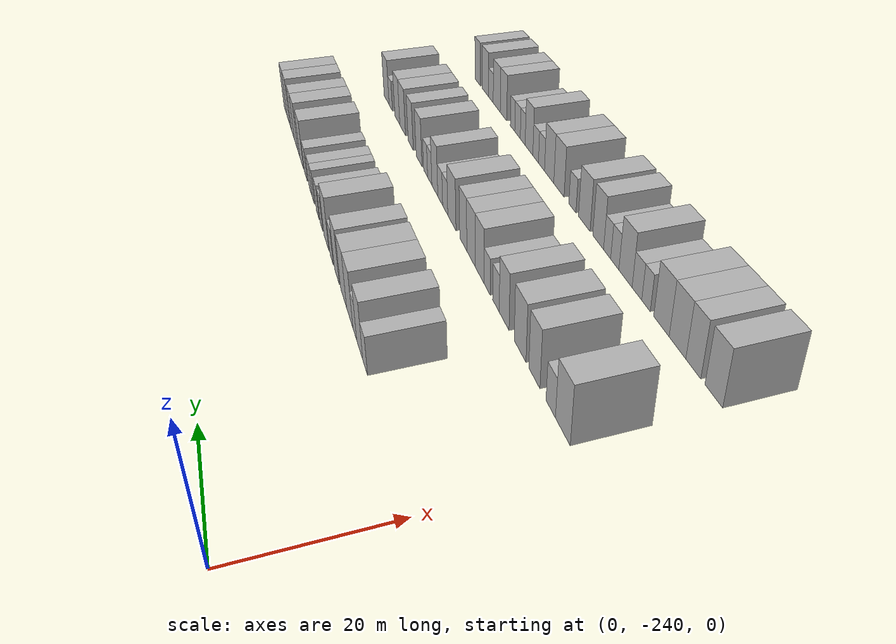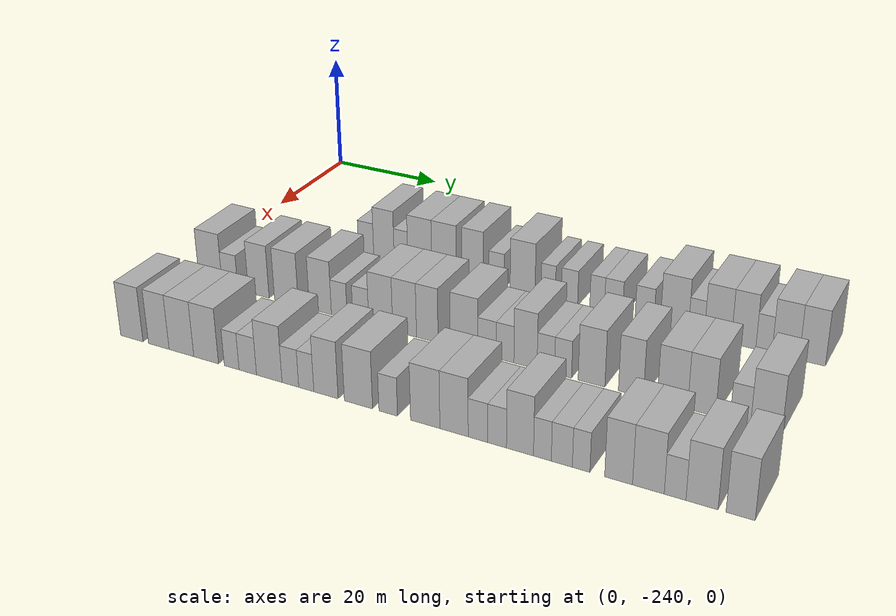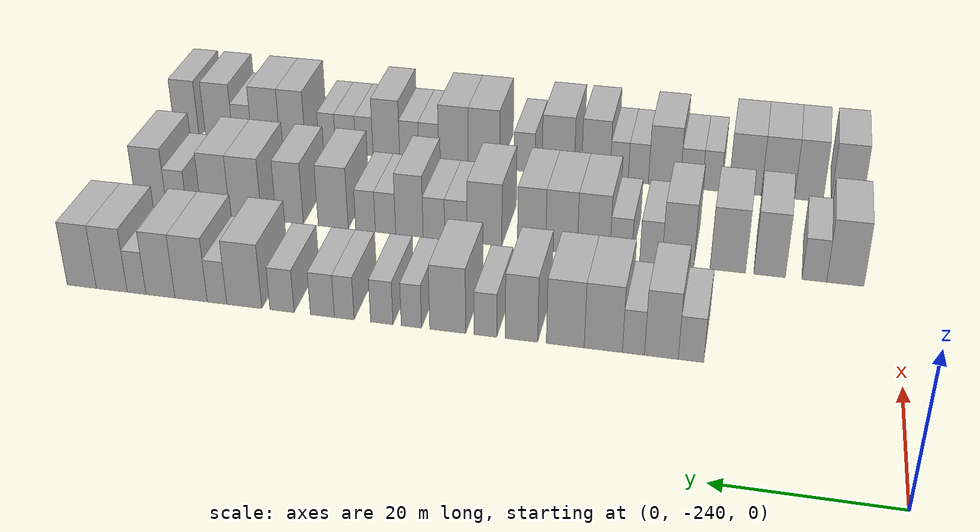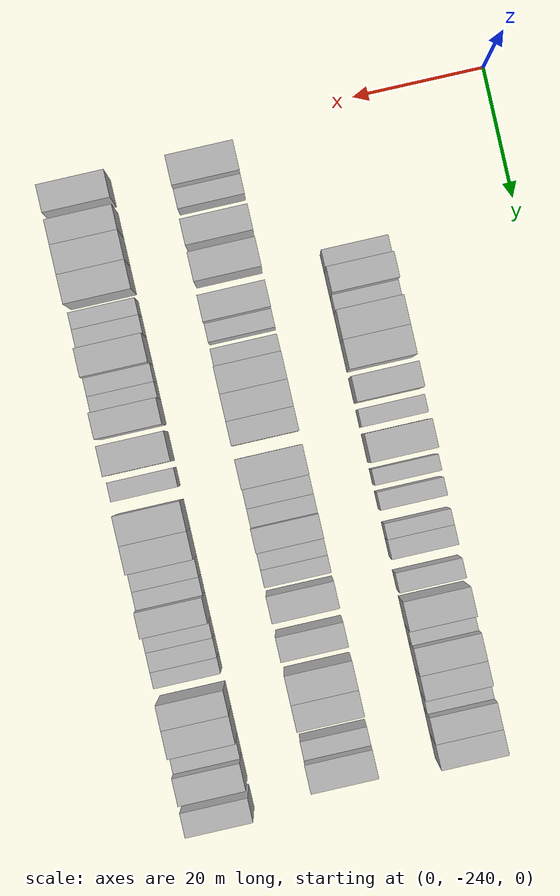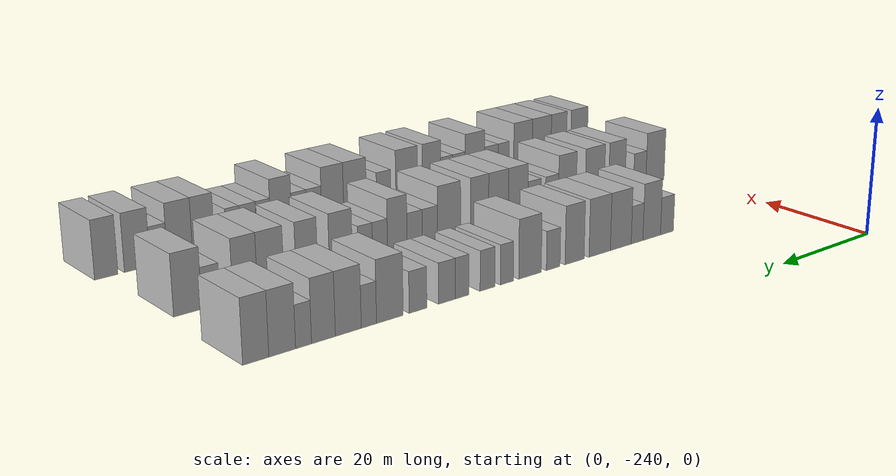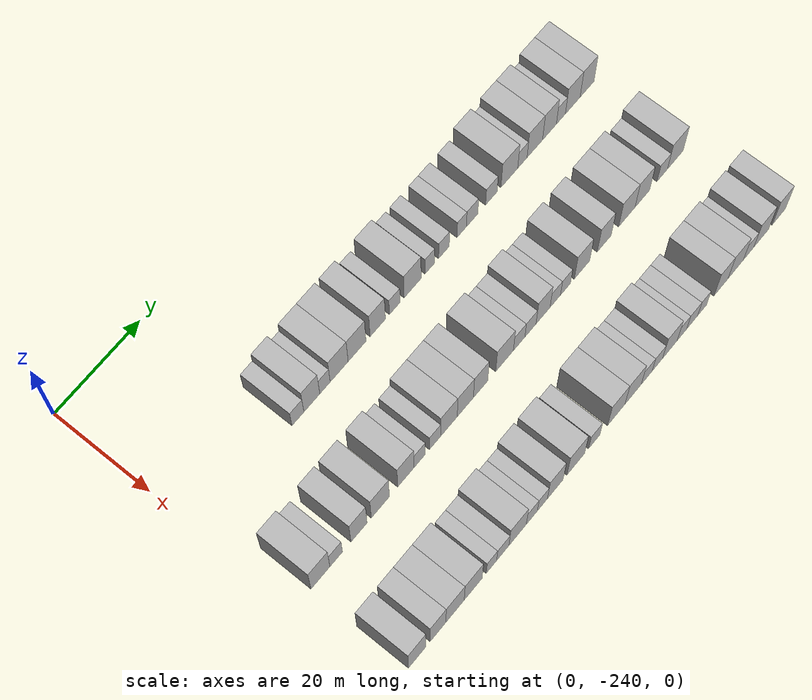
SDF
<sdf version="1.6">
 <world name="default">
  <model name="building_1">
   <static>1</static>
   <pose>25.0000 -216.6953 0 0.000000 0.000000 0.000000</pose>
   <link name="link">
    <pose>0 0 3.00 0 0 0</pose>
    <collision name="collision"><geometry><box><size>10.0000 2.8698 6.0000</size></box></geometry></collision>
    <visual name="visual">
     <cast_shadows>0</cast_shadows>
     <geometry><box><size>10.0000 2.8698 6.0000</size></box></geometry>
     <material>
      <script>
       <uri>model://HANNAS_wall/materials/scripts</uri>
       <uri>model://HANNAS_wall/materials/textures</uri>
       <name>vrc/HANNAS_wall</name>
      </script>
     </material>
    </visual>
   </link>
  </model>
  <model name="building_2">
   <static>1</static>
   <pose>25.0000 -213.3441 0 0.000000 0.000000 0.000000</pose>
   <link name="link">
    <pose>0 0 4.50 0 0 0</pose>
    <collision name="collision"><geometry><box><size>10.0000 3.8325 9.0000</size></box></geometry></collision>
    <visual name="visual">
     <cast_shadows>0</cast_shadows>
     <geometry><box><size>10.0000 3.8325 9.0000</size></box></geometry>
     <material>
      <script>
       <uri>model://HANNAS_wall/materials/scripts</uri>
       <uri>model://HANNAS_wall/materials/textures</uri>
       <name>vrc/HANNAS_wall</name>
      </script>
     </material>
    </visual>
   </link>
  </model>
  <model name="building_3">
   <static>1</static>
   <pose>25.0000 -210.1695 0 0.000000 0.000000 0.000000</pose>
   <link name="link">
    <pose>0 0 3.00 0 0 0</pose>
    <collision name="collision"><geometry><box><size>10.0000 2.5166 6.0000</size></box></geometry></collision>
    <visual name="visual">
     <cast_shadows>0</cast_shadows>
     <geometry><box><size>10.0000 2.5166 6.0000</size></box></geometry>
     <material>
      <script>
       <uri>model://HANNAS_wall/materials/scripts</uri>
       <uri>model://HANNAS_wall/materials/textures</uri>
       <name>vrc/HANNAS_wall</name>
      </script>
     </material>
    </visual>
   </link>
  </model>
  <model name="building_4">
   <static>1</static>
   <pose>25.0000 -206.7211 0 0.000000 0.000000 0.000000</pose>
   <link name="link">
    <pose>0 0 4.50 0 0 0</pose>
    <collision name="collision"><geometry><box><size>10.0000 4.3803 9.0000</size></box></geometry></collision>
    <visual name="visual">
     <cast_shadows>0</cast_shadows>
     <geometry><box><size>10.0000 4.3803 9.0000</size></box></geometry>
     <material>
      <script>
       <uri>model://HANNAS_wall/materials/scripts</uri>
       <uri>model://HANNAS_wall/materials/textures</uri>
       <name>vrc/HANNAS_wall</name>
      </script>
     </material>
    </visual>
   </link>
  </model>
  <model name="building_5">
   <static>1</static>
   <pose>25.0000 -202.3341 0 0.000000 0.000000 0.000000</pose>
   <link name="link">
    <pose>0 0 4.50 0 0 0</pose>
    <collision name="collision"><geometry><box><size>10.0000 4.3935 9.0000</size></box></geometry></collision>
    <visual name="visual">
     <cast_shadows>0</cast_shadows>
     <geometry><box><size>10.0000 4.3935 9.0000</size></box></geometry>
     <material>
      <script>
       <uri>model://HANNAS_wall/materials/scripts</uri>
       <uri>model://HANNAS_wall/materials/textures</uri>
       <name>vrc/HANNAS_wall</name>
      </script>
     </material>
    </visual>
   </link>
  </model>
  <model name="building_6">
   <static>1</static>
   <pose>25.0000 -197.2362 0 0.000000 0.000000 0.000000</pose>
   <link name="link">
    <pose>0 0 4.50 0 0 0</pose>
    <collision name="collision"><geometry><box><size>10.0000 3.8024 9.0000</size></box></geometry></collision>
    <visual name="visual">
     <cast_shadows>0</cast_shadows>
     <geometry><box><size>10.0000 3.8024 9.0000</size></box></geometry>
     <material>
      <script>
       <uri>model://HANNAS_wall/materials/scripts</uri>
       <uri>model://HANNAS_wall/materials/textures</uri>
       <name>vrc/HANNAS_wall</name>
      </script>
     </material>
    </visual>
   </link>
  </model>
  <model name="building_7">
   <static>1</static>
   <pose>25.0000 -193.0057 0 0.000000 0.000000 0.000000</pose>
   <link name="link">
    <pose>0 0 3.00 0 0 0</pose>
    <collision name="collision"><geometry><box><size>10.0000 2.6584 6.0000</size></box></geometry></collision>
    <visual name="visual">
     <cast_shadows>0</cast_shadows>
     <geometry><box><size>10.0000 2.6584 6.0000</size></box></geometry>
     <material>
      <script>
       <uri>model://HANNAS_wall/materials/scripts</uri>
       <uri>model://HANNAS_wall/materials/textures</uri>
       <name>vrc/HANNAS_wall</name>
      </script>
     </material>
    </visual>
   </link>
  </model>
  <model name="building_8">
   <static>1</static>
   <pose>25.0000 -188.5366 0 0.000000 0.000000 0.000000</pose>
   <link name="link">
    <pose>0 0 4.50 0 0 0</pose>
    <collision name="collision"><geometry><box><size>10.0000 4.2798 9.0000</size></box></geometry></collision>
    <visual name="visual">
     <cast_shadows>0</cast_shadows>
     <geometry><box><size>10.0000 4.2798 9.0000</size></box></geometry>
     <material>
      <script>
       <uri>model://HANNAS_wall/materials/scripts</uri>
       <uri>model://HANNAS_wall/materials/textures</uri>
       <name>vrc/HANNAS_wall</name>
      </script>
     </material>
    </visual>
   </link>
  </model>
  <model name="building_9">
   <static>1</static>
   <pose>25.0000 -184.1848 0 0.000000 0.000000 0.000000</pose>
   <link name="link">
    <pose>0 0 3.00 0 0 0</pose>
    <collision name="collision"><geometry><box><size>10.0000 2.4239 6.0000</size></box></geometry></collision>
    <visual name="visual">
     <cast_shadows>0</cast_shadows>
     <geometry><box><size>10.0000 2.4239 6.0000</size></box></geometry>
     <material>
      <script>
       <uri>model://HANNAS_wall/materials/scripts</uri>
       <uri>model://HANNAS_wall/materials/textures</uri>
       <name>vrc/HANNAS_wall</name>
      </script>
     </material>
    </visual>
   </link>
  </model>
  <model name="building_10">
   <static>1</static>
   <pose>25.0000 -180.6165 0 0.000000 0.000000 0.000000</pose>
   <link name="link">
    <pose>0 0 3.00 0 0 0</pose>
    <collision name="collision"><geometry><box><size>10.0000 2.7126 6.0000</size></box></geometry></collision>
    <visual name="visual">
     <cast_shadows>0</cast_shadows>
     <geometry><box><size>10.0000 2.7126 6.0000</size></box></geometry>
     <material>
      <script>
       <uri>model://HANNAS_wall/materials/scripts</uri>
       <uri>model://HANNAS_wall/materials/textures</uri>
       <name>vrc/HANNAS_wall</name>
      </script>
     </material>
    </visual>
   </link>
  </model>
  <model name="building_11">
   <static>1</static>
   <pose>25.0000 -176.0593 0 0.000000 0.000000 0.000000</pose>
   <link name="link">
    <pose>0 0 3.00 0 0 0</pose>
    <collision name="collision"><geometry><box><size>10.0000 2.4017 6.0000</size></box></geometry></collision>
    <visual name="visual">
     <cast_shadows>0</cast_shadows>
     <geometry><box><size>10.0000 2.4017 6.0000</size></box></geometry>
     <material>
      <script>
       <uri>model://HANNAS_wall/materials/scripts</uri>
       <uri>model://HANNAS_wall/materials/textures</uri>
       <name>vrc/HANNAS_wall</name>
      </script>
     </material>
    </visual>
   </link>
  </model>
  <model name="building_12">
   <static>1</static>
   <pose>25.0000 -173.3840 0 0.000000 0.000000 0.000000</pose>
   <link name="link">
    <pose>0 0 3.00 0 0 0</pose>
    <collision name="collision"><geometry><box><size>10.0000 2.9487 6.0000</size></box></geometry></collision>
    <visual name="visual">
     <cast_shadows>0</cast_shadows>
     <geometry><box><size>10.0000 2.9487 6.0000</size></box></geometry>
     <material>
      <script>
       <uri>model://HANNAS_wall/materials/scripts</uri>
       <uri>model://HANNAS_wall/materials/textures</uri>
       <name>vrc/HANNAS_wall</name>
      </script>
     </material>
    </visual>
   </link>
  </model>
  <model name="building_13">
   <static>1</static>
   <pose>25.0000 -168.4103 0 0.000000 0.000000 0.000000</pose>
   <link name="link">
    <pose>0 0 3.00 0 0 0</pose>
    <collision name="collision"><geometry><box><size>10.0000 2.9987 6.0000</size></box></geometry></collision>
    <visual name="visual">
     <cast_shadows>0</cast_shadows>
     <geometry><box><size>10.0000 2.9987 6.0000</size></box></geometry>
     <material>
      <script>
       <uri>model://HANNAS_wall/materials/scripts</uri>
       <uri>model://HANNAS_wall/materials/textures</uri>
       <name>vrc/HANNAS_wall</name>
      </script>
     </material>
    </visual>
   </link>
  </model>
  <model name="building_14">
   <static>1</static>
   <pose>25.0000 -163.7138 0 0.000000 0.000000 0.000000</pose>
   <link name="link">
    <pose>0 0 4.50 0 0 0</pose>
    <collision name="collision"><geometry><box><size>10.0000 4.3944 9.0000</size></box></geometry></collision>
    <visual name="visual">
     <cast_shadows>0</cast_shadows>
     <geometry><box><size>10.0000 4.3944 9.0000</size></box></geometry>
     <material>
      <script>
       <uri>model://HANNAS_wall/materials/scripts</uri>
       <uri>model://HANNAS_wall/materials/textures</uri>
       <name>vrc/HANNAS_wall</name>
      </script>
     </material>
    </visual>
   </link>
  </model>
  <model name="building_15">
   <static>1</static>
   <pose>25.0000 -160.2892 0 0.000000 0.000000 0.000000</pose>
   <link name="link">
    <pose>0 0 3.00 0 0 0</pose>
    <collision name="collision"><geometry><box><size>10.0000 2.4548 6.0000</size></box></geometry></collision>
    <visual name="visual">
     <cast_shadows>0</cast_shadows>
     <geometry><box><size>10.0000 2.4548 6.0000</size></box></geometry>
     <material>
      <script>
       <uri>model://HANNAS_wall/materials/scripts</uri>
       <uri>model://HANNAS_wall/materials/textures</uri>
       <name>vrc/HANNAS_wall</name>
      </script>
     </material>
    </visual>
   </link>
  </model>
  <model name="building_16">
   <static>1</static>
   <pose>25.0000 -157.0114 0 0.000000 0.000000 0.000000</pose>
   <link name="link">
    <pose>0 0 4.50 0 0 0</pose>
    <collision name="collision"><geometry><box><size>10.0000 4.1008 9.0000</size></box></geometry></collision>
    <visual name="visual">
     <cast_shadows>0</cast_shadows>
     <geometry><box><size>10.0000 4.1008 9.0000</size></box></geometry>
     <material>
      <script>
       <uri>model://HANNAS_wall/materials/scripts</uri>
       <uri>model://HANNAS_wall/materials/textures</uri>
       <name>vrc/HANNAS_wall</name>
      </script>
     </material>
    </visual>
   </link>
  </model>
  <model name="building_17">
   <static>1</static>
   <pose>25.0000 -153.1219 0 0.000000 0.000000 0.000000</pose>
   <link name="link">
    <pose>0 0 4.50 0 0 0</pose>
    <collision name="collision"><geometry><box><size>10.0000 3.6781 9.0000</size></box></geometry></collision>
    <visual name="visual">
     <cast_shadows>0</cast_shadows>
     <geometry><box><size>10.0000 3.6781 9.0000</size></box></geometry>
     <material>
      <script>
       <uri>model://HANNAS_wall/materials/scripts</uri>
       <uri>model://HANNAS_wall/materials/textures</uri>
       <name>vrc/HANNAS_wall</name>
      </script>
     </material>
    </visual>
   </link>
  </model>
  <model name="building_18">
   <static>1</static>
   <pose>25.0000 -150.0791 0 0.000000 0.000000 0.000000</pose>
   <link name="link">
    <pose>0 0 3.00 0 0 0</pose>
    <collision name="collision"><geometry><box><size>10.0000 2.4076 6.0000</size></box></geometry></collision>
    <visual name="visual">
     <cast_shadows>0</cast_shadows>
     <geometry><box><size>10.0000 2.4076 6.0000</size></box></geometry>
     <material>
      <script>
       <uri>model://HANNAS_wall/materials/scripts</uri>
       <uri>model://HANNAS_wall/materials/textures</uri>
       <name>vrc/HANNAS_wall</name>
      </script>
     </material>
    </visual>
   </link>
  </model>
  <model name="building_19">
   <static>1</static>
   <pose>25.0000 -146.8874 0 0.000000 0.000000 0.000000</pose>
   <link name="link">
    <pose>0 0 4.50 0 0 0</pose>
    <collision name="collision"><geometry><box><size>10.0000 3.9758 9.0000</size></box></geometry></collision>
    <visual name="visual">
     <cast_shadows>0</cast_shadows>
     <geometry><box><size>10.0000 3.9758 9.0000</size></box></geometry>
     <material>
      <script>
       <uri>model://HANNAS_wall/materials/scripts</uri>
       <uri>model://HANNAS_wall/materials/textures</uri>
       <name>vrc/HANNAS_wall</name>
      </script>
     </material>
    </visual>
   </link>
  </model>
  <model name="building_20">
   <static>1</static>
   <pose>25.0000 -143.0052 0 0.000000 0.000000 0.000000</pose>
   <link name="link">
    <pose>0 0 4.50 0 0 0</pose>
    <collision name="collision"><geometry><box><size>10.0000 3.7887 9.0000</size></box></geometry></collision>
    <visual name="visual">
     <cast_shadows>0</cast_shadows>
     <geometry><box><size>10.0000 3.7887 9.0000</size></box></geometry>
     <material>
      <script>
       <uri>model://HANNAS_wall/materials/scripts</uri>
       <uri>model://HANNAS_wall/materials/textures</uri>
       <name>vrc/HANNAS_wall</name>
      </script>
     </material>
    </visual>
   </link>
  </model>
  <model name="building_104">
   <static>1</static>
   <pose>44.0000 -233.7806 0 0.000000 0.000000 0.000000</pose>
   <link name="link">
    <pose>0 0 4.50 0 0 0</pose>
    <collision name="collision"><geometry><box><size>10.0000 4.4388 9.0000</size></box></geometry></collision>
    <visual name="visual">
     <cast_shadows>0</cast_shadows>
     <geometry><box><size>10.0000 4.4388 9.0000</size></box></geometry>
     <material>
      <script>
       <uri>model://HANNAS_wall/materials/scripts</uri>
       <uri>model://HANNAS_wall/materials/textures</uri>
       <name>vrc/HANNAS_wall</name>
      </script>
     </material>
    </visual>
   </link>
  </model>
  <model name="building_105">
   <static>1</static>
   <pose>44.0000 -230.0752 0 0.000000 0.000000 0.000000</pose>
   <link name="link">
    <pose>0 0 3.00 0 0 0</pose>
    <collision name="collision"><geometry><box><size>10.0000 2.9720 6.0000</size></box></geometry></collision>
    <visual name="visual">
     <cast_shadows>0</cast_shadows>
     <geometry><box><size>10.0000 2.9720 6.0000</size></box></geometry>
     <material>
      <script>
       <uri>model://HANNAS_wall/materials/scripts</uri>
       <uri>model://HANNAS_wall/materials/textures</uri>
       <name>vrc/HANNAS_wall</name>
      </script>
     </material>
    </visual>
   </link>
  </model>
  <model name="building_106">
   <static>1</static>
   <pose>44.0000 -224.6689 0 0.000000 0.000000 0.000000</pose>
   <link name="link">
    <pose>0 0 4.50 0 0 0</pose>
    <collision name="collision"><geometry><box><size>10.0000 3.8405 9.0000</size></box></geometry></collision>
    <visual name="visual">
     <cast_shadows>0</cast_shadows>
     <geometry><box><size>10.0000 3.8405 9.0000</size></box></geometry>
     <material>
      <script>
       <uri>model://HANNAS_wall/materials/scripts</uri>
       <uri>model://HANNAS_wall/materials/textures</uri>
       <name>vrc/HANNAS_wall</name>
      </script>
     </material>
    </visual>
   </link>
  </model>
  <model name="building_107">
   <static>1</static>
   <pose>44.0000 -219.5739 0 0.000000 0.000000 0.000000</pose>
   <link name="link">
    <pose>0 0 4.50 0 0 0</pose>
    <collision name="collision"><geometry><box><size>10.0000 4.3495 9.0000</size></box></geometry></collision>
    <visual name="visual">
     <cast_shadows>0</cast_shadows>
     <geometry><box><size>10.0000 4.3495 9.0000</size></box></geometry>
     <material>
      <script>
       <uri>model://HANNAS_wall/materials/scripts</uri>
       <uri>model://HANNAS_wall/materials/textures</uri>
       <name>vrc/HANNAS_wall</name>
      </script>
     </material>
    </visual>
   </link>
  </model>
  <model name="building_108">
   <static>1</static>
   <pose>44.0000 -213.4348 0 0.000000 0.000000 0.000000</pose>
   <link name="link">
    <pose>0 0 4.50 0 0 0</pose>
    <collision name="collision"><geometry><box><size>10.0000 3.9286 9.0000</size></box></geometry></collision>
    <visual name="visual">
     <cast_shadows>0</cast_shadows>
     <geometry><box><size>10.0000 3.9286 9.0000</size></box></geometry>
     <material>
      <script>
       <uri>model://HANNAS_wall/materials/scripts</uri>
       <uri>model://HANNAS_wall/materials/textures</uri>
       <name>vrc/HANNAS_wall</name>
      </script>
     </material>
    </visual>
   </link>
  </model>
  <model name="building_109">
   <static>1</static>
   <pose>44.0000 -210.0770 0 0.000000 0.000000 0.000000</pose>
   <link name="link">
    <pose>0 0 3.00 0 0 0</pose>
    <collision name="collision"><geometry><box><size>10.0000 2.7871 6.0000</size></box></geometry></collision>
    <visual name="visual">
     <cast_shadows>0</cast_shadows>
     <geometry><box><size>10.0000 2.7871 6.0000</size></box></geometry>
     <material>
      <script>
       <uri>model://HANNAS_wall/materials/scripts</uri>
       <uri>model://HANNAS_wall/materials/textures</uri>
       <name>vrc/HANNAS_wall</name>
      </script>
     </material>
    </visual>
   </link>
  </model>
  <model name="building_110">
   <static>1</static>
   <pose>44.0000 -206.3109 0 0.000000 0.000000 0.000000</pose>
   <link name="link">
    <pose>0 0 3.00 0 0 0</pose>
    <collision name="collision"><geometry><box><size>10.0000 2.7449 6.0000</size></box></geometry></collision>
    <visual name="visual">
     <cast_shadows>0</cast_shadows>
     <geometry><box><size>10.0000 2.7449 6.0000</size></box></geometry>
     <material>
      <script>
       <uri>model://HANNAS_wall/materials/scripts</uri>
       <uri>model://HANNAS_wall/materials/textures</uri>
       <name>vrc/HANNAS_wall</name>
      </script>
     </material>
    </visual>
   </link>
  </model>
  <model name="building_111">
   <static>1</static>
   <pose>44.0000 -202.8830 0 0.000000 0.000000 0.000000</pose>
   <link name="link">
    <pose>0 0 4.50 0 0 0</pose>
    <collision name="collision"><geometry><box><size>10.0000 4.1109 9.0000</size></box></geometry></collision>
    <visual name="visual">
     <cast_shadows>0</cast_shadows>
     <geometry><box><size>10.0000 4.1109 9.0000</size></box></geometry>
     <material>
      <script>
       <uri>model://HANNAS_wall/materials/scripts</uri>
       <uri>model://HANNAS_wall/materials/textures</uri>
       <name>vrc/HANNAS_wall</name>
      </script>
     </material>
    </visual>
   </link>
  </model>
  <model name="building_112">
   <static>1</static>
   <pose>44.0000 -198.8192 0 0.000000 0.000000 0.000000</pose>
   <link name="link">
    <pose>0 0 4.50 0 0 0</pose>
    <collision name="collision"><geometry><box><size>10.0000 4.0167 9.0000</size></box></geometry></collision>
    <visual name="visual">
     <cast_shadows>0</cast_shadows>
     <geometry><box><size>10.0000 4.0167 9.0000</size></box></geometry>
     <material>
      <script>
       <uri>model://HANNAS_wall/materials/scripts</uri>
       <uri>model://HANNAS_wall/materials/textures</uri>
       <name>vrc/HANNAS_wall</name>
      </script>
     </material>
    </visual>
   </link>
  </model>
  <model name="building_113">
   <static>1</static>
   <pose>44.0000 -195.0103 0 0.000000 0.000000 0.000000</pose>
   <link name="link">
    <pose>0 0 4.50 0 0 0</pose>
    <collision name="collision"><geometry><box><size>10.0000 3.6010 9.0000</size></box></geometry></collision>
    <visual name="visual">
     <cast_shadows>0</cast_shadows>
     <geometry><box><size>10.0000 3.6010 9.0000</size></box></geometry>
     <material>
      <script>
       <uri>model://HANNAS_wall/materials/scripts</uri>
       <uri>model://HANNAS_wall/materials/textures</uri>
       <name>vrc/HANNAS_wall</name>
      </script>
     </material>
    </visual>
   </link>
  </model>
  <model name="building_114">
   <static>1</static>
   <pose>44.0000 -188.9753 0 0.000000 0.000000 0.000000</pose>
   <link name="link">
    <pose>0 0 4.50 0 0 0</pose>
    <collision name="collision"><geometry><box><size>10.0000 4.4691 9.0000</size></box></geometry></collision>
    <visual name="visual">
     <cast_shadows>0</cast_shadows>
     <geometry><box><size>10.0000 4.4691 9.0000</size></box></geometry>
     <material>
      <script>
       <uri>model://HANNAS_wall/materials/scripts</uri>
       <uri>model://HANNAS_wall/materials/textures</uri>
       <name>vrc/HANNAS_wall</name>
      </script>
     </material>
    </visual>
   </link>
  </model>
  <model name="building_115">
   <static>1</static>
   <pose>44.0000 -185.2750 0 0.000000 0.000000 0.000000</pose>
   <link name="link">
    <pose>0 0 3.00 0 0 0</pose>
    <collision name="collision"><geometry><box><size>10.0000 2.9315 6.0000</size></box></geometry></collision>
    <visual name="visual">
     <cast_shadows>0</cast_shadows>
     <geometry><box><size>10.0000 2.9315 6.0000</size></box></geometry>
     <material>
      <script>
       <uri>model://HANNAS_wall/materials/scripts</uri>
       <uri>model://HANNAS_wall/materials/textures</uri>
       <name>vrc/HANNAS_wall</name>
      </script>
     </material>
    </visual>
   </link>
  </model>
  <model name="building_116">
   <static>1</static>
   <pose>44.0000 -182.3963 0 0.000000 0.000000 0.000000</pose>
   <link name="link">
    <pose>0 0 3.00 0 0 0</pose>
    <collision name="collision"><geometry><box><size>10.0000 2.8260 6.0000</size></box></geometry></collision>
    <visual name="visual">
     <cast_shadows>0</cast_shadows>
     <geometry><box><size>10.0000 2.8260 6.0000</size></box></geometry>
     <material>
      <script>
       <uri>model://HANNAS_wall/materials/scripts</uri>
       <uri>model://HANNAS_wall/materials/textures</uri>
       <name>vrc/HANNAS_wall</name>
      </script>
     </material>
    </visual>
   </link>
  </model>
  <model name="building_117">
   <static>1</static>
   <pose>44.0000 -179.1709 0 0.000000 0.000000 0.000000</pose>
   <link name="link">
    <pose>0 0 4.50 0 0 0</pose>
    <collision name="collision"><geometry><box><size>10.0000 3.6247 9.0000</size></box></geometry></collision>
    <visual name="visual">
     <cast_shadows>0</cast_shadows>
     <geometry><box><size>10.0000 3.6247 9.0000</size></box></geometry>
     <material>
      <script>
       <uri>model://HANNAS_wall/materials/scripts</uri>
       <uri>model://HANNAS_wall/materials/textures</uri>
       <name>vrc/HANNAS_wall</name>
      </script>
     </material>
    </visual>
   </link>
  </model>
  <model name="building_118">
   <static>1</static>
   <pose>44.0000 -176.0124 0 0.000000 0.000000 0.000000</pose>
   <link name="link">
    <pose>0 0 3.00 0 0 0</pose>
    <collision name="collision"><geometry><box><size>10.0000 2.6923 6.0000</size></box></geometry></collision>
    <visual name="visual">
     <cast_shadows>0</cast_shadows>
     <geometry><box><size>10.0000 2.6923 6.0000</size></box></geometry>
     <material>
      <script>
       <uri>model://HANNAS_wall/materials/scripts</uri>
       <uri>model://HANNAS_wall/materials/textures</uri>
       <name>vrc/HANNAS_wall</name>
      </script>
     </material>
    </visual>
   </link>
  </model>
  <model name="building_119">
   <static>1</static>
   <pose>44.0000 -173.3636 0 0.000000 0.000000 0.000000</pose>
   <link name="link">
    <pose>0 0 3.00 0 0 0</pose>
    <collision name="collision"><geometry><box><size>10.0000 2.6053 6.0000</size></box></geometry></collision>
    <visual name="visual">
     <cast_shadows>0</cast_shadows>
     <geometry><box><size>10.0000 2.6053 6.0000</size></box></geometry>
     <material>
      <script>
       <uri>model://HANNAS_wall/materials/scripts</uri>
       <uri>model://HANNAS_wall/materials/textures</uri>
       <name>vrc/HANNAS_wall</name>
      </script>
     </material>
    </visual>
   </link>
  </model>
  <model name="building_120">
   <static>1</static>
   <pose>44.0000 -169.0514 0 0.000000 0.000000 0.000000</pose>
   <link name="link">
    <pose>0 0 4.50 0 0 0</pose>
    <collision name="collision"><geometry><box><size>10.0000 4.0191 9.0000</size></box></geometry></collision>
    <visual name="visual">
     <cast_shadows>0</cast_shadows>
     <geometry><box><size>10.0000 4.0191 9.0000</size></box></geometry>
     <material>
      <script>
       <uri>model://HANNAS_wall/materials/scripts</uri>
       <uri>model://HANNAS_wall/materials/textures</uri>
       <name>vrc/HANNAS_wall</name>
      </script>
     </material>
    </visual>
   </link>
  </model>
  <model name="building_121">
   <static>1</static>
   <pose>44.0000 -163.2043 0 0.000000 0.000000 0.000000</pose>
   <link name="link">
    <pose>0 0 4.50 0 0 0</pose>
    <collision name="collision"><geometry><box><size>10.0000 3.6750 9.0000</size></box></geometry></collision>
    <visual name="visual">
     <cast_shadows>0</cast_shadows>
     <geometry><box><size>10.0000 3.6750 9.0000</size></box></geometry>
     <material>
      <script>
       <uri>model://HANNAS_wall/materials/scripts</uri>
       <uri>model://HANNAS_wall/materials/textures</uri>
       <name>vrc/HANNAS_wall</name>
      </script>
     </material>
    </visual>
   </link>
  </model>
  <model name="building_122">
   <static>1</static>
   <pose>44.0000 -157.1944 0 0.000000 0.000000 0.000000</pose>
   <link name="link">
    <pose>0 0 4.50 0 0 0</pose>
    <collision name="collision"><geometry><box><size>10.0000 4.3448 9.0000</size></box></geometry></collision>
    <visual name="visual">
     <cast_shadows>0</cast_shadows>
     <geometry><box><size>10.0000 4.3448 9.0000</size></box></geometry>
     <material>
      <script>
       <uri>model://HANNAS_wall/materials/scripts</uri>
       <uri>model://HANNAS_wall/materials/textures</uri>
       <name>vrc/HANNAS_wall</name>
      </script>
     </material>
    </visual>
   </link>
  </model>
  <model name="building_123">
   <static>1</static>
   <pose>44.0000 -153.0560 0 0.000000 0.000000 0.000000</pose>
   <link name="link">
    <pose>0 0 4.50 0 0 0</pose>
    <collision name="collision"><geometry><box><size>10.0000 3.9321 9.0000</size></box></geometry></collision>
    <visual name="visual">
     <cast_shadows>0</cast_shadows>
     <geometry><box><size>10.0000 3.9321 9.0000</size></box></geometry>
     <material>
      <script>
       <uri>model://HANNAS_wall/materials/scripts</uri>
       <uri>model://HANNAS_wall/materials/textures</uri>
       <name>vrc/HANNAS_wall</name>
      </script>
     </material>
    </visual>
   </link>
  </model>
  <model name="building_124">
   <static>1</static>
   <pose>44.0000 -147.6836 0 0.000000 0.000000 0.000000</pose>
   <link name="link">
    <pose>0 0 3.00 0 0 0</pose>
    <collision name="collision"><geometry><box><size>10.0000 2.8126 6.0000</size></box></geometry></collision>
    <visual name="visual">
     <cast_shadows>0</cast_shadows>
     <geometry><box><size>10.0000 2.8126 6.0000</size></box></geometry>
     <material>
      <script>
       <uri>model://HANNAS_wall/materials/scripts</uri>
       <uri>model://HANNAS_wall/materials/textures</uri>
       <name>vrc/HANNAS_wall</name>
      </script>
     </material>
    </visual>
   </link>
  </model>
  <model name="building_125">
   <static>1</static>
   <pose>44.0000 -144.1393 0 0.000000 0.000000 0.000000</pose>
   <link name="link">
    <pose>0 0 4.50 0 0 0</pose>
    <collision name="collision"><geometry><box><size>10.0000 4.2760 9.0000</size></box></geometry></collision>
    <visual name="visual">
     <cast_shadows>0</cast_shadows>
     <geometry><box><size>10.0000 4.2760 9.0000</size></box></geometry>
     <material>
      <script>
       <uri>model://HANNAS_wall/materials/scripts</uri>
       <uri>model://HANNAS_wall/materials/textures</uri>
       <name>vrc/HANNAS_wall</name>
      </script>
     </material>
    </visual>
   </link>
  </model>
  <model name="building_210">
   <static>1</static>
   <pose>63.0000 -233.9430 0 0.000000 0.000000 0.000000</pose>
   <link name="link">
    <pose>0 0 4.50 0 0 0</pose>
    <collision name="collision"><geometry><box><size>10.0000 4.1139 9.0000</size></box></geometry></collision>
    <visual name="visual">
     <cast_shadows>0</cast_shadows>
     <geometry><box><size>10.0000 4.1139 9.0000</size></box></geometry>
     <material>
      <script>
       <uri>model://HANNAS_wall/materials/scripts</uri>
       <uri>model://HANNAS_wall/materials/textures</uri>
       <name>vrc/HANNAS_wall</name>
      </script>
     </material>
    </visual>
   </link>
  </model>
  <model name="building_211">
   <static>1</static>
   <pose>63.0000 -229.0230 0 0.000000 0.000000 0.000000</pose>
   <link name="link">
    <pose>0 0 4.50 0 0 0</pose>
    <collision name="collision"><geometry><box><size>10.0000 3.7262 9.0000</size></box></geometry></collision>
    <visual name="visual">
     <cast_shadows>0</cast_shadows>
     <geometry><box><size>10.0000 3.7262 9.0000</size></box></geometry>
     <material>
      <script>
       <uri>model://HANNAS_wall/materials/scripts</uri>
       <uri>model://HANNAS_wall/materials/textures</uri>
       <name>vrc/HANNAS_wall</name>
      </script>
     </material>
    </visual>
   </link>
  </model>
  <model name="building_212">
   <static>1</static>
   <pose>63.0000 -224.9644 0 0.000000 0.000000 0.000000</pose>
   <link name="link">
    <pose>0 0 4.50 0 0 0</pose>
    <collision name="collision"><geometry><box><size>10.0000 4.3910 9.0000</size></box></geometry></collision>
    <visual name="visual">
     <cast_shadows>0</cast_shadows>
     <geometry><box><size>10.0000 4.3910 9.0000</size></box></geometry>
     <material>
      <script>
       <uri>model://HANNAS_wall/materials/scripts</uri>
       <uri>model://HANNAS_wall/materials/textures</uri>
       <name>vrc/HANNAS_wall</name>
      </script>
     </material>
    </visual>
   </link>
  </model>
  <model name="building_213">
   <static>1</static>
   <pose>63.0000 -220.6045 0 0.000000 0.000000 0.000000</pose>
   <link name="link">
    <pose>0 0 4.50 0 0 0</pose>
    <collision name="collision"><geometry><box><size>10.0000 4.3287 9.0000</size></box></geometry></collision>
    <visual name="visual">
     <cast_shadows>0</cast_shadows>
     <geometry><box><size>10.0000 4.3287 9.0000</size></box></geometry>
     <material>
      <script>
       <uri>model://HANNAS_wall/materials/scripts</uri>
       <uri>model://HANNAS_wall/materials/textures</uri>
       <name>vrc/HANNAS_wall</name>
      </script>
     </material>
    </visual>
   </link>
  </model>
  <model name="building_214">
   <static>1</static>
   <pose>63.0000 -216.1731 0 0.000000 0.000000 0.000000</pose>
   <link name="link">
    <pose>0 0 3.00 0 0 0</pose>
    <collision name="collision"><geometry><box><size>10.0000 2.5342 6.0000</size></box></geometry></collision>
    <visual name="visual">
     <cast_shadows>0</cast_shadows>
     <geometry><box><size>10.0000 2.5342 6.0000</size></box></geometry>
     <material>
      <script>
       <uri>model://HANNAS_wall/materials/scripts</uri>
       <uri>model://HANNAS_wall/materials/textures</uri>
       <name>vrc/HANNAS_wall</name>
      </script>
     </material>
    </visual>
   </link>
  </model>
  <model name="building_215">
   <static>1</static>
   <pose>63.0000 -213.4226 0 0.000000 0.000000 0.000000</pose>
   <link name="link">
    <pose>0 0 3.00 0 0 0</pose>
    <collision name="collision"><geometry><box><size>10.0000 2.9667 6.0000</size></box></geometry></collision>
    <visual name="visual">
     <cast_shadows>0</cast_shadows>
     <geometry><box><size>10.0000 2.9667 6.0000</size></box></geometry>
     <material>
      <script>
       <uri>model://HANNAS_wall/materials/scripts</uri>
       <uri>model://HANNAS_wall/materials/textures</uri>
       <name>vrc/HANNAS_wall</name>
      </script>
     </material>
    </visual>
   </link>
  </model>
  <model name="building_216">
   <static>1</static>
   <pose>63.0000 -209.8029 0 0.000000 0.000000 0.000000</pose>
   <link name="link">
    <pose>0 0 4.50 0 0 0</pose>
    <collision name="collision"><geometry><box><size>10.0000 4.2728 9.0000</size></box></geometry></collision>
    <visual name="visual">
     <cast_shadows>0</cast_shadows>
     <geometry><box><size>10.0000 4.2728 9.0000</size></box></geometry>
     <material>
      <script>
       <uri>model://HANNAS_wall/materials/scripts</uri>
       <uri>model://HANNAS_wall/materials/textures</uri>
       <name>vrc/HANNAS_wall</name>
      </script>
     </material>
    </visual>
   </link>
  </model>
  <model name="building_217">
   <static>1</static>
   <pose>63.0000 -206.2909 0 0.000000 0.000000 0.000000</pose>
   <link name="link">
    <pose>0 0 3.00 0 0 0</pose>
    <collision name="collision"><geometry><box><size>10.0000 2.7512 6.0000</size></box></geometry></collision>
    <visual name="visual">
     <cast_shadows>0</cast_shadows>
     <geometry><box><size>10.0000 2.7512 6.0000</size></box></geometry>
     <material>
      <script>
       <uri>model://HANNAS_wall/materials/scripts</uri>
       <uri>model://HANNAS_wall/materials/textures</uri>
       <name>vrc/HANNAS_wall</name>
      </script>
     </material>
    </visual>
   </link>
  </model>
  <model name="building_218">
   <static>1</static>
   <pose>63.0000 -203.6774 0 0.000000 0.000000 0.000000</pose>
   <link name="link">
    <pose>0 0 3.00 0 0 0</pose>
    <collision name="collision"><geometry><box><size>10.0000 2.4759 6.0000</size></box></geometry></collision>
    <visual name="visual">
     <cast_shadows>0</cast_shadows>
     <geometry><box><size>10.0000 2.4759 6.0000</size></box></geometry>
     <material>
      <script>
       <uri>model://HANNAS_wall/materials/scripts</uri>
       <uri>model://HANNAS_wall/materials/textures</uri>
       <name>vrc/HANNAS_wall</name>
      </script>
     </material>
    </visual>
   </link>
  </model>
  <model name="building_219">
   <static>1</static>
   <pose>63.0000 -200.4797 0 0.000000 0.000000 0.000000</pose>
   <link name="link">
    <pose>0 0 4.50 0 0 0</pose>
    <collision name="collision"><geometry><box><size>10.0000 3.9195 9.0000</size></box></geometry></collision>
    <visual name="visual">
     <cast_shadows>0</cast_shadows>
     <geometry><box><size>10.0000 3.9195 9.0000</size></box></geometry>
     <material>
      <script>
       <uri>model://HANNAS_wall/materials/scripts</uri>
       <uri>model://HANNAS_wall/materials/textures</uri>
       <name>vrc/HANNAS_wall</name>
      </script>
     </material>
    </visual>
   </link>
  </model>
  <model name="building_220">
   <static>1</static>
   <pose>63.0000 -195.2927 0 0.000000 0.000000 0.000000</pose>
   <link name="link">
    <pose>0 0 4.50 0 0 0</pose>
    <collision name="collision"><geometry><box><size>10.0000 4.4545 9.0000</size></box></geometry></collision>
    <visual name="visual">
     <cast_shadows>0</cast_shadows>
     <geometry><box><size>10.0000 4.4545 9.0000</size></box></geometry>
     <material>
      <script>
       <uri>model://HANNAS_wall/materials/scripts</uri>
       <uri>model://HANNAS_wall/materials/textures</uri>
       <name>vrc/HANNAS_wall</name>
      </script>
     </material>
    </visual>
   </link>
  </model>
  <model name="building_221">
   <static>1</static>
   <pose>63.0000 -190.6328 0 0.000000 0.000000 0.000000</pose>
   <link name="link">
    <pose>0 0 3.00 0 0 0</pose>
    <collision name="collision"><geometry><box><size>10.0000 2.8653 6.0000</size></box></geometry></collision>
    <visual name="visual">
     <cast_shadows>0</cast_shadows>
     <geometry><box><size>10.0000 2.8653 6.0000</size></box></geometry>
     <material>
      <script>
       <uri>model://HANNAS_wall/materials/scripts</uri>
       <uri>model://HANNAS_wall/materials/textures</uri>
       <name>vrc/HANNAS_wall</name>
      </script>
     </material>
    </visual>
   </link>
  </model>
  <model name="building_222">
   <static>1</static>
   <pose>63.0000 -184.9846 0 0.000000 0.000000 0.000000</pose>
   <link name="link">
    <pose>0 0 4.50 0 0 0</pose>
    <collision name="collision"><geometry><box><size>10.0000 4.4311 9.0000</size></box></geometry></collision>
    <visual name="visual">
     <cast_shadows>0</cast_shadows>
     <geometry><box><size>10.0000 4.4311 9.0000</size></box></geometry>
     <material>
      <script>
       <uri>model://HANNAS_wall/materials/scripts</uri>
       <uri>model://HANNAS_wall/materials/textures</uri>
       <name>vrc/HANNAS_wall</name>
      </script>
     </material>
    </visual>
   </link>
  </model>
  <model name="building_223">
   <static>1</static>
   <pose>63.0000 -180.6723 0 0.000000 0.000000 0.000000</pose>
   <link name="link">
    <pose>0 0 4.50 0 0 0</pose>
    <collision name="collision"><geometry><box><size>10.0000 4.1935 9.0000</size></box></geometry></collision>
    <visual name="visual">
     <cast_shadows>0</cast_shadows>
     <geometry><box><size>10.0000 4.1935 9.0000</size></box></geometry>
     <material>
      <script>
       <uri>model://HANNAS_wall/materials/scripts</uri>
       <uri>model://HANNAS_wall/materials/textures</uri>
       <name>vrc/HANNAS_wall</name>
      </script>
     </material>
    </visual>
   </link>
  </model>
  <model name="building_224">
   <static>1</static>
   <pose>63.0000 -177.1553 0 0.000000 0.000000 0.000000</pose>
   <link name="link">
    <pose>0 0 3.00 0 0 0</pose>
    <collision name="collision"><geometry><box><size>10.0000 2.8406 6.0000</size></box></geometry></collision>
    <visual name="visual">
     <cast_shadows>0</cast_shadows>
     <geometry><box><size>10.0000 2.8406 6.0000</size></box></geometry>
     <material>
      <script>
       <uri>model://HANNAS_wall/materials/scripts</uri>
       <uri>model://HANNAS_wall/materials/textures</uri>
       <name>vrc/HANNAS_wall</name>
      </script>
     </material>
    </visual>
   </link>
  </model>
  <model name="building_225">
   <static>1</static>
   <pose>63.0000 -174.3740 0 0.000000 0.000000 0.000000</pose>
   <link name="link">
    <pose>0 0 3.00 0 0 0</pose>
    <collision name="collision"><geometry><box><size>10.0000 2.7219 6.0000</size></box></geometry></collision>
    <visual name="visual">
     <cast_shadows>0</cast_shadows>
     <geometry><box><size>10.0000 2.7219 6.0000</size></box></geometry>
     <material>
      <script>
       <uri>model://HANNAS_wall/materials/scripts</uri>
       <uri>model://HANNAS_wall/materials/textures</uri>
       <name>vrc/HANNAS_wall</name>
      </script>
     </material>
    </visual>
   </link>
  </model>
  <model name="building_226">
   <static>1</static>
   <pose>63.0000 -171.0896 0 0.000000 0.000000 0.000000</pose>
   <link name="link">
    <pose>0 0 4.50 0 0 0</pose>
    <collision name="collision"><geometry><box><size>10.0000 3.8471 9.0000</size></box></geometry></collision>
    <visual name="visual">
     <cast_shadows>0</cast_shadows>
     <geometry><box><size>10.0000 3.8471 9.0000</size></box></geometry>
     <material>
      <script>
       <uri>model://HANNAS_wall/materials/scripts</uri>
       <uri>model://HANNAS_wall/materials/textures</uri>
       <name>vrc/HANNAS_wall</name>
      </script>
     </material>
    </visual>
   </link>
  </model>
  <model name="building_227">
   <static>1</static>
   <pose>63.0000 -167.9173 0 0.000000 0.000000 0.000000</pose>
   <link name="link">
    <pose>0 0 3.00 0 0 0</pose>
    <collision name="collision"><geometry><box><size>10.0000 2.4974 6.0000</size></box></geometry></collision>
    <visual name="visual">
     <cast_shadows>0</cast_shadows>
     <geometry><box><size>10.0000 2.4974 6.0000</size></box></geometry>
     <material>
      <script>
       <uri>model://HANNAS_wall/materials/scripts</uri>
       <uri>model://HANNAS_wall/materials/textures</uri>
       <name>vrc/HANNAS_wall</name>
      </script>
     </material>
    </visual>
   </link>
  </model>
  <model name="building_228">
   <static>1</static>
   <pose>63.0000 -165.2094 0 0.000000 0.000000 0.000000</pose>
   <link name="link">
    <pose>0 0 3.00 0 0 0</pose>
    <collision name="collision"><geometry><box><size>10.0000 2.9185 6.0000</size></box></geometry></collision>
    <visual name="visual">
     <cast_shadows>0</cast_shadows>
     <geometry><box><size>10.0000 2.9185 6.0000</size></box></geometry>
     <material>
      <script>
       <uri>model://HANNAS_wall/materials/scripts</uri>
       <uri>model://HANNAS_wall/materials/textures</uri>
       <name>vrc/HANNAS_wall</name>
      </script>
     </material>
    </visual>
   </link>
  </model>
  <model name="building_229">
   <static>1</static>
   <pose>63.0000 -162.5453 0 0.000000 0.000000 0.000000</pose>
   <link name="link">
    <pose>0 0 3.00 0 0 0</pose>
    <collision name="collision"><geometry><box><size>10.0000 2.4097 6.0000</size></box></geometry></collision>
    <visual name="visual">
     <cast_shadows>0</cast_shadows>
     <geometry><box><size>10.0000 2.4097 6.0000</size></box></geometry>
     <material>
      <script>
       <uri>model://HANNAS_wall/materials/scripts</uri>
       <uri>model://HANNAS_wall/materials/textures</uri>
       <name>vrc/HANNAS_wall</name>
      </script>
     </material>
    </visual>
   </link>
  </model>
  <model name="building_230">
   <static>1</static>
   <pose>63.0000 -157.4759 0 0.000000 0.000000 0.000000</pose>
   <link name="link">
    <pose>0 0 4.50 0 0 0</pose>
    <collision name="collision"><geometry><box><size>10.0000 3.7291 9.0000</size></box></geometry></collision>
    <visual name="visual">
     <cast_shadows>0</cast_shadows>
     <geometry><box><size>10.0000 3.7291 9.0000</size></box></geometry>
     <material>
      <script>
       <uri>model://HANNAS_wall/materials/scripts</uri>
       <uri>model://HANNAS_wall/materials/textures</uri>
       <name>vrc/HANNAS_wall</name>
      </script>
     </material>
    </visual>
   </link>
  </model>
  <model name="building_231">
   <static>1</static>
   <pose>63.0000 -153.5249 0 0.000000 0.000000 0.000000</pose>
   <link name="link">
    <pose>0 0 4.50 0 0 0</pose>
    <collision name="collision"><geometry><box><size>10.0000 4.1730 9.0000</size></box></geometry></collision>
    <visual name="visual">
     <cast_shadows>0</cast_shadows>
     <geometry><box><size>10.0000 4.1730 9.0000</size></box></geometry>
     <material>
      <script>
       <uri>model://HANNAS_wall/materials/scripts</uri>
       <uri>model://HANNAS_wall/materials/textures</uri>
       <name>vrc/HANNAS_wall</name>
      </script>
     </material>
    </visual>
   </link>
  </model>
  <model name="building_232">
   <static>1</static>
   <pose>63.0000 -150.0338 0 0.000000 0.000000 0.000000</pose>
   <link name="link">
    <pose>0 0 3.00 0 0 0</pose>
    <collision name="collision"><geometry><box><size>10.0000 2.8090 6.0000</size></box></geometry></collision>
    <visual name="visual">
     <cast_shadows>0</cast_shadows>
     <geometry><box><size>10.0000 2.8090 6.0000</size></box></geometry>
     <material>
      <script>
       <uri>model://HANNAS_wall/materials/scripts</uri>
       <uri>model://HANNAS_wall/materials/textures</uri>
       <name>vrc/HANNAS_wall</name>
      </script>
     </material>
    </visual>
   </link>
  </model>
  <model name="building_233">
   <static>1</static>
   <pose>63.0000 -146.5828 0 0.000000 0.000000 0.000000</pose>
   <link name="link">
    <pose>0 0 4.50 0 0 0</pose>
    <collision name="collision"><geometry><box><size>10.0000 4.0930 9.0000</size></box></geometry></collision>
    <visual name="visual">
     <cast_shadows>0</cast_shadows>
     <geometry><box><size>10.0000 4.0930 9.0000</size></box></geometry>
     <material>
      <script>
       <uri>model://HANNAS_wall/materials/scripts</uri>
       <uri>model://HANNAS_wall/materials/textures</uri>
       <name>vrc/HANNAS_wall</name>
      </script>
     </material>
    </visual>
   </link>
  </model>
  <model name="building_234">
   <static>1</static>
   <pose>63.0000 -141.7190 0 0.000000 0.000000 0.000000</pose>
   <link name="link">
    <pose>0 0 4.50 0 0 0</pose>
    <collision name="collision"><geometry><box><size>10.0000 3.6347 9.0000</size></box></geometry></collision>
    <visual name="visual">
     <cast_shadows>0</cast_shadows>
     <geometry><box><size>10.0000 3.6347 9.0000</size></box></geometry>
     <material>
      <script>
       <uri>model://HANNAS_wall/materials/scripts</uri>
       <uri>model://HANNAS_wall/materials/textures</uri>
       <name>vrc/HANNAS_wall</name>
      </script>
     </material>
    </visual>
   </link>
  </model>
 </world>
</sdf>
